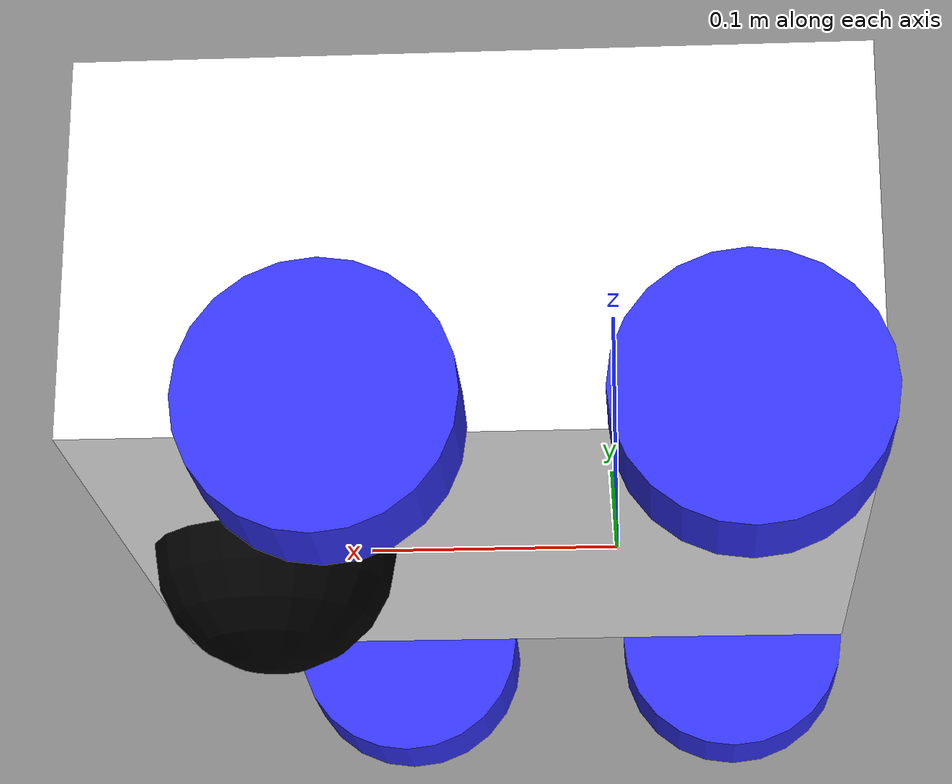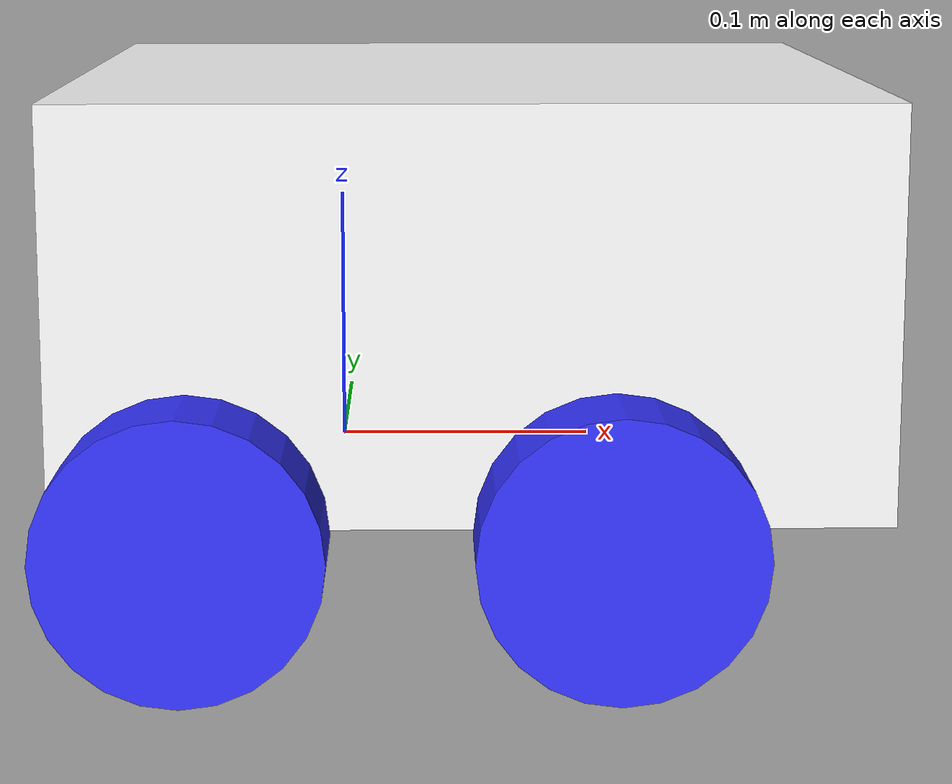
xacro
<?xml version="1.0"?>
<robot xmlns:xacro="http://www.ros.org/wiki/xacro" >

    <xacro:include filename="inertial_macros.xacro"/>

    <material name="white">
        <color rgba="1 1 1 1" />
    </material>

    <material name="orange">
        <color rgba="1 0.3 0.1 1"/>
    </material>

    <material name="blue">
        <color rgba="0.2 0.2 1 1"/>
    </material>

    <material name="black">
        <color rgba="0 0 0 1"/>
    </material>
    <material name="red">
        <color rgba="1 0 0 1"/>
    </material>
    <!-- BASE LINK -->

    <link name="base_link">

    </link>

    <!-- CHASSIS LINK -->

    <joint name="chassis_joint" type="fixed">
        <parent link="base_link"/>
        <child link="chassis"/>
        <origin xyz="-0.1 0 0"/>
    </joint>

    <link name="chassis">
        <visual>
            <origin xyz="0.15 0 0.075"/>
            <geometry>
                <box size="0.3 0.3 0.15"/>
            </geometry>
            <material name="white"/>
        </visual>
        <collision>
            <origin xyz="0.15 0 0.075"/>
            <geometry>
                <box size="0.3 0.3 0.15"/>
            </geometry>
        </collision>
        <xacro:inertial_box mass="0.5" x="0.3" y="0.3" z="0.15">
            <origin xyz="0.15 0 0.075" rpy="0 0 0"/>
        </xacro:inertial_box>
    </link>

    <!-- LEFT WHEEL LINK BACK-->

    <joint name="left_wheel_joint" type="continuous">
        <parent link="base_link"/>
        <child link="left_wheel"/>
        <origin xyz="-0.050 0.175 0" rpy="-${pi/2} 0 0" />
        <axis xyz="0 0 1"/>
    </joint>

    <link name="left_wheel">
        <visual>
            <geometry>
                <cylinder radius="0.05" length="0.04"/>
            </geometry>
            <material name="blue"/>
        </visual>
        <collision>
            <geometry>
                <cylinder radius="0.05" length="0.04"/>
            </geometry>
        </collision>
        <xacro:inertial_cylinder mass="0.1" length="0.04" radius="0.05">
            <origin xyz="0 0 0" rpy="0 0 0"/>
        </xacro:inertial_cylinder>
    </link>

    <!-- RIGHT WHEEL LINK -->

    <joint name="right_wheel_joint" type="continuous">
        <parent link="base_link"/>
        <child link="right_wheel"/>
        <origin xyz="-0.050 -0.175 0" rpy="${pi/2} 0 0" />
        <axis xyz="0 0 -1"/>
    </joint>

    <link name="right_wheel">
        <visual>
            <geometry>
                <cylinder radius="0.05" length="0.04"/>
            </geometry>
            <material name="blue"/>
        </visual>
        <collision>
            <geometry>
                <cylinder radius="0.05" length="0.04"/>
            </geometry>
        </collision>
        <xacro:inertial_cylinder mass="0.1" length="0.04" radius="0.05">
            <origin xyz="0 0 0" rpy="0 0 0"/>
        </xacro:inertial_cylinder>
    </link>

      <!-- AJOUT 4 ROUE -->
    <!-- LEFT WHEEL LINK FRONT-->

    <joint name="right_wheel_front_joint" type="continuous">
        <parent link="base_link"/>
        <child link="right_wheel_front"/>
        <origin xyz="0.100 -0.175 0" rpy="${pi/2} 0 0" />
        <axis xyz="0 0 -1"/>
    </joint>

    <link name="right_wheel_front">
        <visual>
            <geometry>
                <cylinder radius="0.05" length="0.04"/>
            </geometry>
            <material name="blue"/>
        </visual>
        <collision>
            <geometry>
                <cylinder radius="0.05" length="0.04"/>
            </geometry>
        </collision>
        <xacro:inertial_cylinder mass="0.1" length="0.04" radius="0.05">
            <origin xyz="0 0 0" rpy="0 0 0"/>
        </xacro:inertial_cylinder>
    </link>

    <joint name="left_wheel_front_joint" type="continuous">
        <parent link="base_link"/>
        <child link="left_wheel_front"/>
         <origin xyz="0.100 0.175 0" rpy="-${pi/2} 0 0" />
        <axis xyz="0 0 1"/>
    </joint>

    <link name="left_wheel_front">
        <visual>
            <geometry>
                <cylinder radius="0.05" length="0.04"/>
            </geometry>
            <material name="blue"/>
        </visual>
        <collision>
            <geometry>
                <cylinder radius="0.05" length="0.04"/>
            </geometry>
        </collision>
        <xacro:inertial_cylinder mass="0.1" length="0.04" radius="0.05">
            <origin xyz="0 0 0" rpy="0 0 0"/>
        </xacro:inertial_cylinder>
    </link>

    <!-- AJOUT 4 ROUE -->

    <!-- CASTER WHEEL LINK -->

    <joint name="caster_wheel_joint" type="fixed">
        <parent link="chassis"/>
        <child link="caster_wheel"/>
        <origin xyz="0.24 0 0"/>
    </joint>

    <link name="caster_wheel">
        <visual>
            <geometry>
                <sphere radius="0.05"/>
            </geometry>
            <material name="black"/>
        </visual>
        <collision>
            <geometry>
                <sphere radius="0.05"/>
            </geometry>
        </collision>
        <xacro:inertial_sphere mass="0.1" radius="0.05">
            <origin xyz="0 0 0" rpy="0 0 0"/>
        </xacro:inertial_sphere>
    </link>

</robot>
